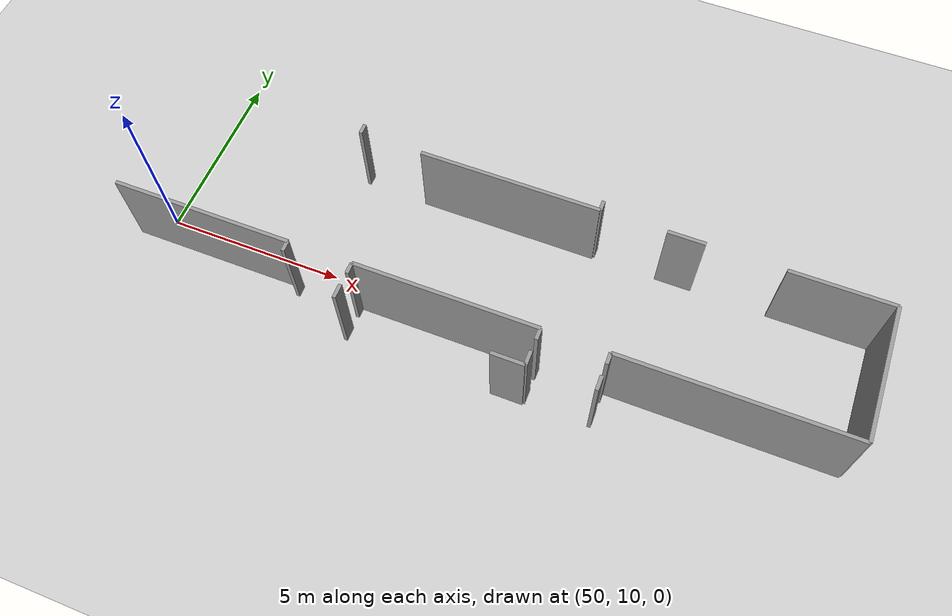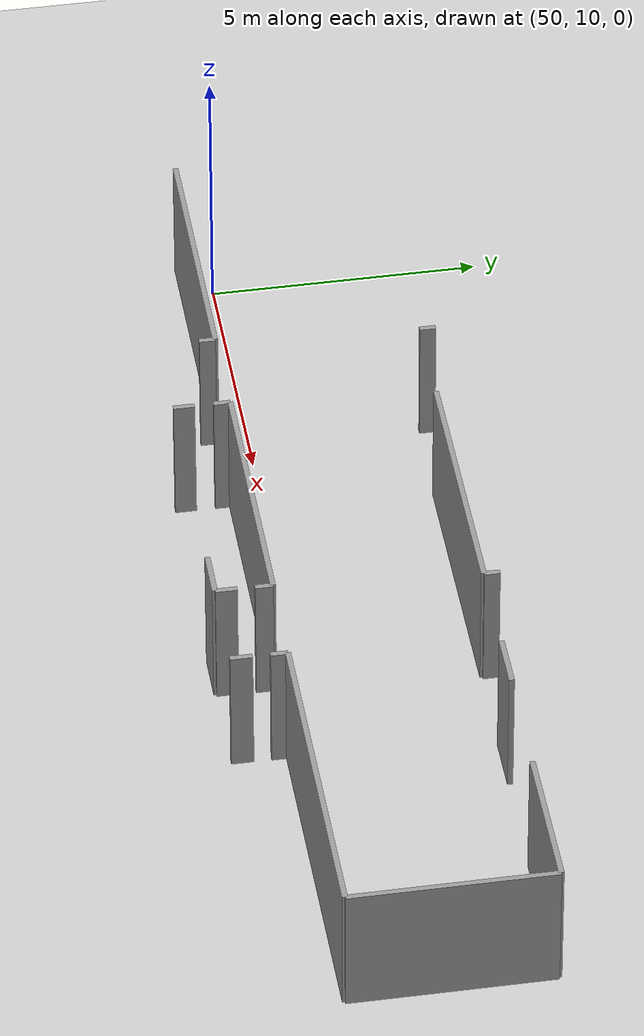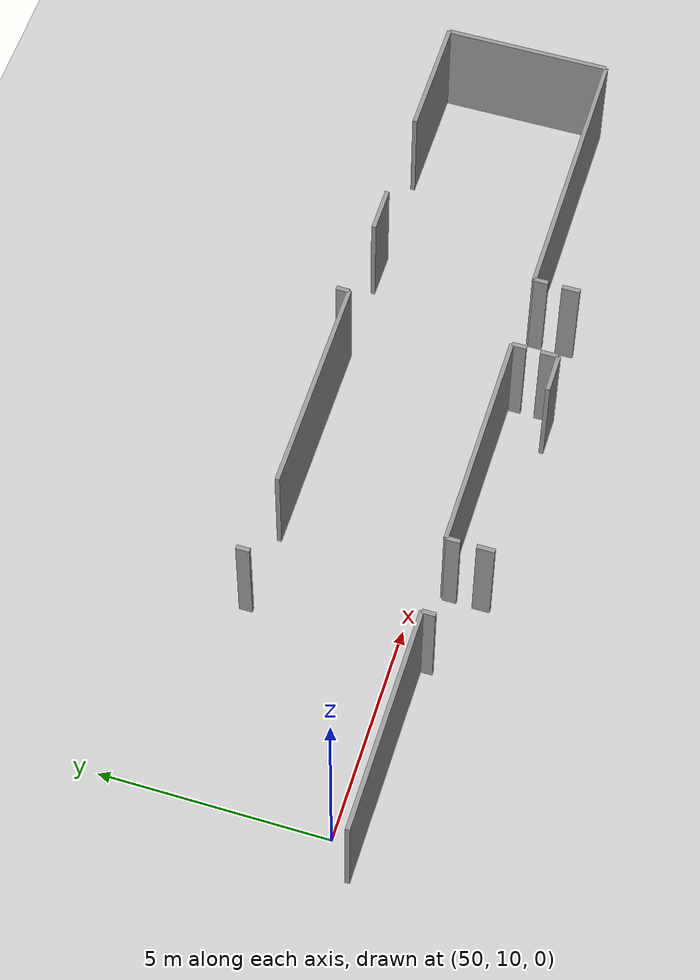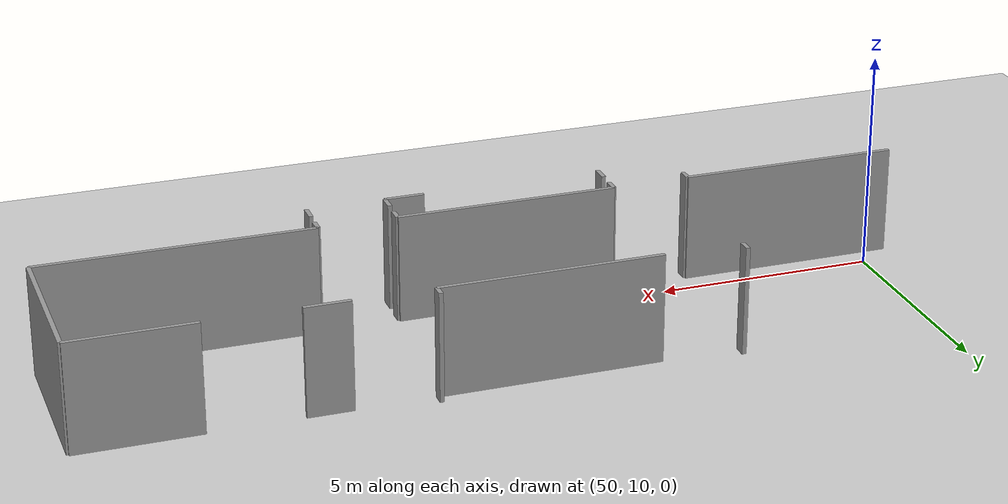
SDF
<sdf version="1.6">
 <world name="default">
  <model name="ground_plane">
   <static>1</static>
   <link name="link">
    <collision name="collision">
     <geometry><plane><normal>0 0 1</normal><size>100 100</size></plane></geometry>
     <surface><friction><ode><mu>100</mu><mu2>50</mu2></ode></friction></surface>
    </collision>
    <visual name="visual">
     <cast_shadows>0</cast_shadows>
     <geometry><plane><normal>0 0 1</normal><size>100 100</size></plane></geometry>
     <material>
      <script><uri>file://media/materials/scripts/gazebo.material</uri><name>Gazebo/Grey</name></script>
     </material>
    </visual>
   </link>
  </model>
  <model name="0510032197_A_40_1_105">
   <static>1</static>
   <link name="Wall_203">
    <collision name="Wall_203_Collision">
     <geometry><box><size>0.902400894775 0.1 2.5</size></box></geometry>
     <pose>0.451200447387 0 1.25 0 0 0</pose>
    </collision>
    <visual name="Wall_203_Visual">
     <pose>0.451200447387 0 1.25 0 0 0</pose>
     <geometry><box><size>0.902400894775 0.1 2.5</size></box></geometry>
     <material>
      <script><uri>file://media/materials/scripts/gazebo.material</uri><name>Gazebo/Grey</name></script>
      <ambient>1 1 1 1</ambient>
     </material>
    </visual>
    <pose>125.666315027 -15.7545215369 0 0 0 0.0</pose>
   </link>
   <link name="Wall_204">
    <collision name="Wall_204_Collision">
     <geometry><box><size>0.397818986006 0.1 2.5</size></box></geometry>
     <pose>0.198909493003 0 1.25 0 0 0</pose>
    </collision>
    <visual name="Wall_204_Visual">
     <pose>0.198909493003 0 1.25 0 0 0</pose>
     <geometry><box><size>0.397818986006 0.1 2.5</size></box></geometry>
     <material>
      <script><uri>file://media/materials/scripts/gazebo.material</uri><name>Gazebo/Grey</name></script>
      <ambient>1 1 1 1</ambient>
     </material>
    </visual>
    <pose>126.568715922 -15.7545215369 0 0 0 1.57079632679</pose>
   </link>
   <link name="Wall_205">
    <collision name="Wall_205_Collision">
     <geometry><box><size>0.405317810343 0.1 2.5</size></box></geometry>
     <pose>0.202658905172 0 1.25 0 0 0</pose>
    </collision>
    <visual name="Wall_205_Visual">
     <pose>0.202658905172 0 1.25 0 0 0</pose>
     <geometry><box><size>0.405317810343 0.1 2.5</size></box></geometry>
     <material>
      <script><uri>file://media/materials/scripts/gazebo.material</uri><name>Gazebo/Grey</name></script>
      <ambient>1 1 1 1</ambient>
     </material>
    </visual>
    <pose>128.356994878 -15.3567025509 0 0 0 -1.57079632679</pose>
   </link>
   <link name="Wall_215">
    <collision name="Wall_215_Collision">
     <geometry><box><size>0.390193062952 0.1 2.5</size></box></geometry>
     <pose>0.195096531476 0 1.25 0 0 0</pose>
    </collision>
    <visual name="Wall_215_Visual">
     <pose>0.195096531476 0 1.25 0 0 0</pose>
     <geometry><box><size>0.390193062952 0.1 2.5</size></box></geometry>
     <material>
      <script><uri>file://media/materials/scripts/gazebo.material</uri><name>Gazebo/Grey</name></script>
      <ambient>1 1 1 1</ambient>
     </material>
    </visual>
    <pose>121.534335719 -15.3744963713 0 0 0 -1.57079632679</pose>
   </link>
   <link name="Wall_510">
    <collision name="Wall_510_Collision">
     <geometry><box><size>0.296902604253 0.1 2.5</size></box></geometry>
     <pose>0.148451302126 0 1.25 0 0 0</pose>
    </collision>
    <visual name="Wall_510_Visual">
     <pose>0.148451302126 0 1.25 0 0 0</pose>
     <geometry><box><size>0.296902604253 0.1 2.5</size></box></geometry>
     <material>
      <script><uri>file://media/materials/scripts/gazebo.material</uri><name>Gazebo/Grey</name></script>
      <ambient>1 1 1 1</ambient>
     </material>
    </visual>
    <pose>120.061261582 -10.9862860484 0 0 0 1.57079632679</pose>
   </link>
   <link name="Wall_512">
    <collision name="Wall_512_Collision">
     <geometry><box><size>5.03565119028 0.1 2.5</size></box></geometry>
     <pose>2.51782559514 0 1.25 0 0 0</pose>
    </collision>
    <visual name="Wall_512_Visual">
     <pose>2.51782559514 0 1.25 0 0 0</pose>
     <geometry><box><size>5.03565119028 0.1 2.5</size></box></geometry>
     <material>
      <script><uri>file://media/materials/scripts/gazebo.material</uri><name>Gazebo/Grey</name></script>
      <ambient>1 1 1 1</ambient>
     </material>
    </visual>
    <pose>121.843185602 -10.9862860484 0 0 0 0.0</pose>
   </link>
   <link name="Wall_513">
    <collision name="Wall_513_Collision">
     <geometry><box><size>0.290674767092 0.1 2.5</size></box></geometry>
     <pose>0.145337383546 0 1.25 0 0 0</pose>
    </collision>
    <visual name="Wall_513_Visual">
     <pose>0.145337383546 0 1.25 0 0 0</pose>
     <geometry><box><size>0.290674767092 0.1 2.5</size></box></geometry>
     <material>
      <script><uri>file://media/materials/scripts/gazebo.material</uri><name>Gazebo/Grey</name></script>
      <ambient>1 1 1 1</ambient>
     </material>
    </visual>
    <pose>126.878836793 -10.9862860484 0 0 0 1.57079632679</pose>
   </link>
   <link name="Wall_515">
    <collision name="Wall_515_Collision">
     <geometry><box><size>1.03077059952 0.1 2.5</size></box></geometry>
     <pose>0.515385299762 0 1.25 0 0 0</pose>
    </collision>
    <visual name="Wall_515_Visual">
     <pose>0.515385299762 0 1.25 0 0 0</pose>
     <geometry><box><size>1.03077059952 0.1 2.5</size></box></geometry>
     <material>
      <script><uri>file://media/materials/scripts/gazebo.material</uri><name>Gazebo/Grey</name></script>
      <ambient>1 1 1 1</ambient>
     </material>
    </visual>
    <pose>128.679825621 -10.9862860484 0 0 0 0.0</pose>
   </link>
   <link name="Wall_518">
    <collision name="Wall_518_Collision">
     <geometry><box><size>2.7974427738 0.1 2.5</size></box></geometry>
     <pose>1.3987213869 0 1.25 0 0 0</pose>
    </collision>
    <visual name="Wall_518_Visual">
     <pose>1.3987213869 0 1.25 0 0 0</pose>
     <geometry><box><size>2.7974427738 0.1 2.5</size></box></geometry>
     <material>
      <script><uri>file://media/materials/scripts/gazebo.material</uri><name>Gazebo/Grey</name></script>
      <ambient>1 1 1 1</ambient>
     </material>
    </visual>
    <pose>131.80772506 -10.9996314137 0 0 0 0.0</pose>
   </link>
   <link name="Wall_519">
    <collision name="Wall_519_Collision">
     <geometry><box><size>3.73047445951 0.1 2.5</size></box></geometry>
     <pose>1.86523722976 0 1.25 0 0 0</pose>
    </collision>
    <visual name="Wall_519_Visual">
     <pose>1.86523722976 0 1.25 0 0 0</pose>
     <geometry><box><size>3.73047445951 0.1 2.5</size></box></geometry>
     <material>
      <script><uri>file://media/materials/scripts/gazebo.material</uri><name>Gazebo/Grey</name></script>
      <ambient>1 1 1 1</ambient>
     </material>
    </visual>
    <pose>134.605167834 -10.9996314137 0 0 0 -1.57079632679</pose>
   </link>
   <link name="Wall_520">
    <collision name="Wall_520_Collision">
     <geometry><box><size>6.234192097 0.1 2.5</size></box></geometry>
     <pose>3.1170960485 0 1.25 0 0 0</pose>
    </collision>
    <visual name="Wall_520_Visual">
     <pose>3.1170960485 0 1.25 0 0 0</pose>
     <geometry><box><size>6.234192097 0.1 2.5</size></box></geometry>
     <material>
      <script><uri>file://media/materials/scripts/gazebo.material</uri><name>Gazebo/Grey</name></script>
      <ambient>1 1 1 1</ambient>
     </material>
    </visual>
    <pose>134.605167834 -14.7301058732 0 0 0 3.14159265359</pose>
   </link>
   <link name="Wall_521">
    <collision name="Wall_521_Collision">
     <geometry><box><size>0.313044141385 0.1 2.5</size></box></geometry>
     <pose>0.156522070692 0 1.25 0 0 0</pose>
    </collision>
    <visual name="Wall_521_Visual">
     <pose>0.156522070692 0 1.25 0 0 0</pose>
     <geometry><box><size>0.313044141385 0.1 2.5</size></box></geometry>
     <material>
      <script><uri>file://media/materials/scripts/gazebo.material</uri><name>Gazebo/Grey</name></script>
      <ambient>1 1 1 1</ambient>
     </material>
    </visual>
    <pose>128.370975737 -14.7301058732 0 0 0 -1.57079632679</pose>
   </link>
   <link name="Wall_522">
    <collision name="Wall_522_Collision">
     <geometry><box><size>0.324737223401 0.1 2.5</size></box></geometry>
     <pose>0.162368611701 0 1.25 0 0 0</pose>
    </collision>
    <visual name="Wall_522_Visual">
     <pose>0.162368611701 0 1.25 0 0 0</pose>
     <geometry><box><size>0.324737223401 0.1 2.5</size></box></geometry>
     <material>
      <script><uri>file://media/materials/scripts/gazebo.material</uri><name>Gazebo/Grey</name></script>
      <ambient>1 1 1 1</ambient>
     </material>
    </visual>
    <pose>126.582696781 -15.0431500146 0 0 0 1.57079632679</pose>
   </link>
   <link name="Wall_523">
    <collision name="Wall_523_Collision">
     <geometry><box><size>5.04200612616 0.1 2.5</size></box></geometry>
     <pose>2.52100306308 0 1.25 0 0 0</pose>
    </collision>
    <visual name="Wall_523_Visual">
     <pose>2.52100306308 0 1.25 0 0 0</pose>
     <geometry><box><size>5.04200612616 0.1 2.5</size></box></geometry>
     <material>
      <script><uri>file://media/materials/scripts/gazebo.material</uri><name>Gazebo/Grey</name></script>
      <ambient>1 1 1 1</ambient>
     </material>
    </visual>
    <pose>126.582696781 -14.7184127912 0 0 0 3.14159265359</pose>
   </link>
   <link name="Wall_524">
    <collision name="Wall_524_Collision">
     <geometry><box><size>0.30961247601 0.1 2.5</size></box></geometry>
     <pose>0.154806238005 0 1.25 0 0 0</pose>
    </collision>
    <visual name="Wall_524_Visual">
     <pose>0.154806238005 0 1.25 0 0 0</pose>
     <geometry><box><size>0.30961247601 0.1 2.5</size></box></geometry>
     <material>
      <script><uri>file://media/materials/scripts/gazebo.material</uri><name>Gazebo/Grey</name></script>
      <ambient>1 1 1 1</ambient>
     </material>
    </visual>
    <pose>121.540690654 -14.7184127912 0 0 0 -1.57079632679</pose>
   </link>
   <link name="Wall_525">
    <collision name="Wall_525_Collision">
     <geometry><box><size>0.297919393993 0.1 2.5</size></box></geometry>
     <pose>0.148959696997 0 1.25 0 0 0</pose>
    </collision>
    <visual name="Wall_525_Visual">
     <pose>0.148959696997 0 1.25 0 0 0</pose>
     <geometry><box><size>0.297919393993 0.1 2.5</size></box></geometry>
     <material>
      <script><uri>file://media/materials/scripts/gazebo.material</uri><name>Gazebo/Grey</name></script>
      <ambient>1 1 1 1</ambient>
     </material>
    </visual>
    <pose>119.752411698 -15.0280252672 0 0 0 1.57079632679</pose>
   </link>
   <link name="Wall_526">
    <collision name="Wall_526_Collision">
     <geometry><box><size>5.02802526723 0.1 2.5</size></box></geometry>
     <pose>2.51401263361 0 1.25 0 0 0</pose>
    </collision>
    <visual name="Wall_526_Visual">
     <pose>2.51401263361 0 1.25 0 0 0</pose>
     <geometry><box><size>5.02802526723 0.1 2.5</size></box></geometry>
     <material>
      <script><uri>file://media/materials/scripts/gazebo.material</uri><name>Gazebo/Grey</name></script>
      <ambient>1 1 1 1</ambient>
     </material>
    </visual>
    <pose>119.752411698 -14.7301058732 0 0 0 3.14159265359</pose>
   </link>
   <pose>-65.5 24.1613162343 0 0 0 0</pose>
  </model>
 </world>
</sdf>
